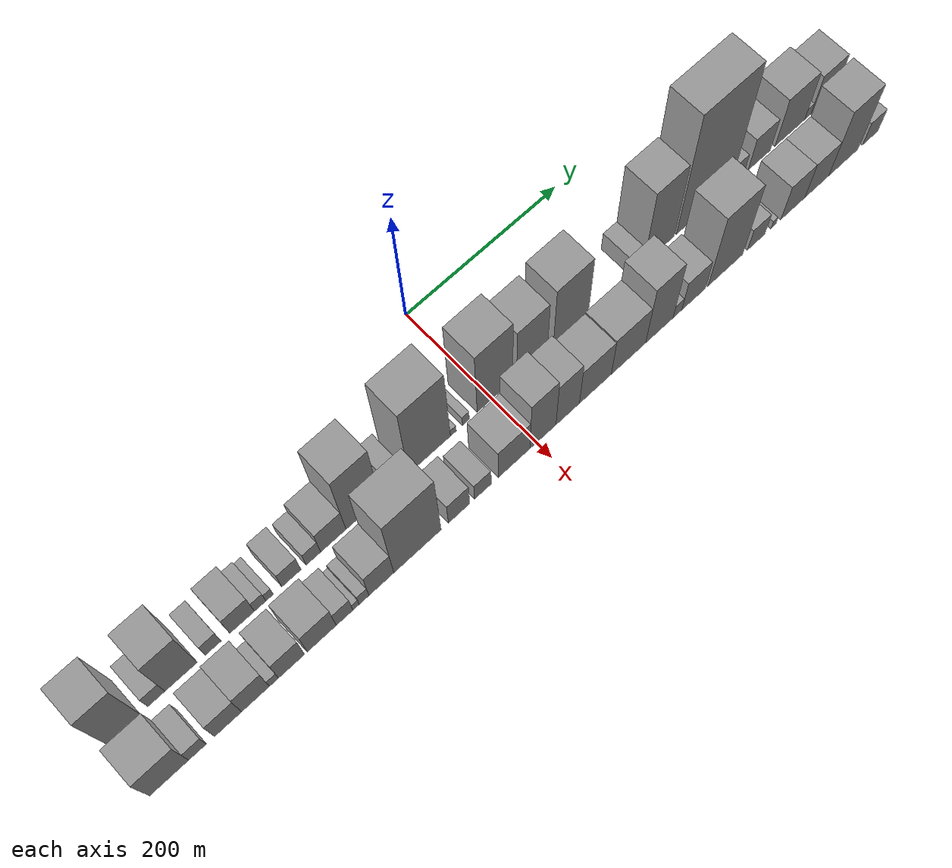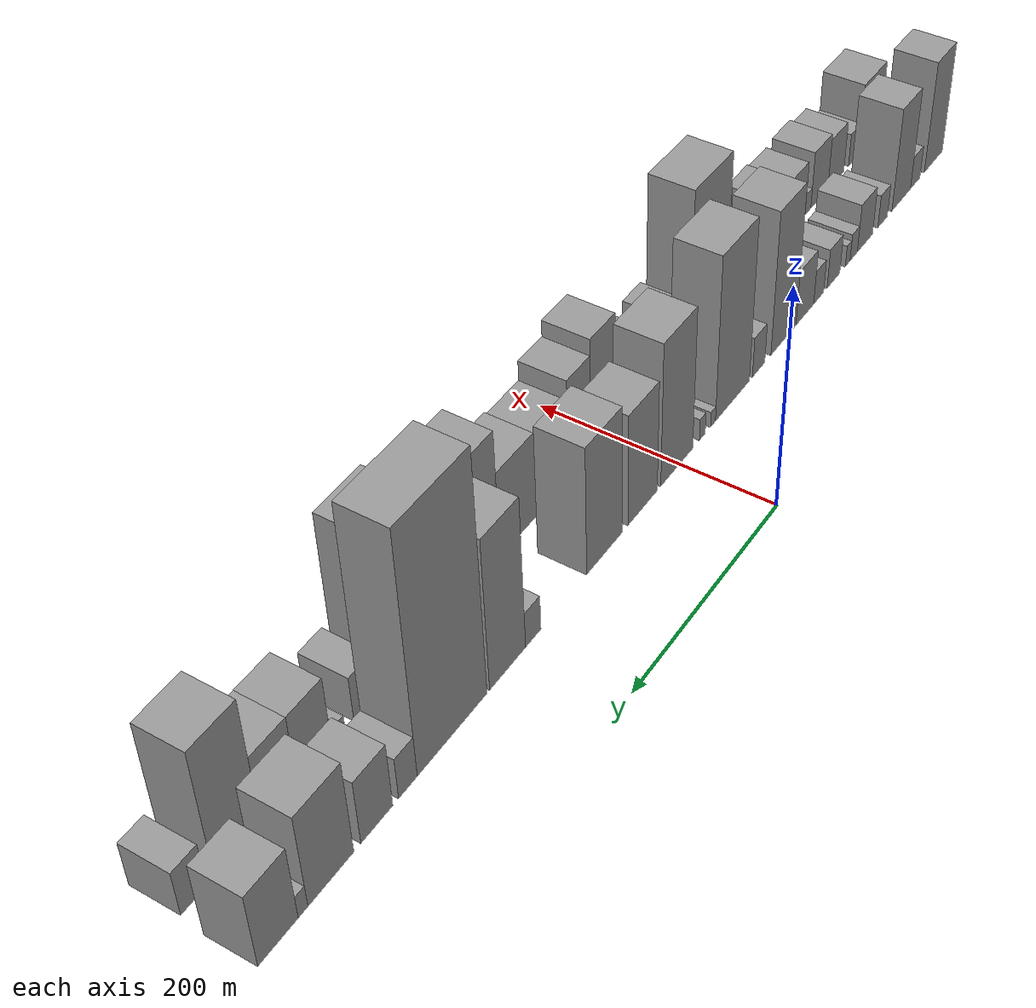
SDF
<sdf version="1.6">
 <world name="default">
  <scene>
   <sky><clouds><speed>12</speed></clouds></sky>
   <ambient>0.4 0.4 0.4 1</ambient>
   <background>0.7 0.7 0.7 1</background>
   <shadows>1</shadows>
  </scene>
  <gravity>0 0 -9.8066</gravity>
  <magnetic_field>6e-06 2.3e-05 -4.2e-05</magnetic_field>
  <physics default="0" name="default_physics" type="ode">
   <ode>
    <solver>
     <type>quick</type>
     <iters>10</iters>
     <sor>1.0</sor>
     <use_dynamic_moi_rescaling>0</use_dynamic_moi_rescaling>
    </solver>
    <constraints>
     <cfm>0</cfm>
     <erp>0.2</erp>
     <contact_max_correcting_vel>100</contact_max_correcting_vel>
     <contact_surface_layer>0.001</contact_surface_layer>
    </constraints>
   </ode>
   <max_step_size>0.004</max_step_size>
   <real_time_factor>1</real_time_factor>
   <real_time_update_rate>250</real_time_update_rate>
  </physics>
  <light name="sun" type="directional">
   <pose>0 0 10 0 0 0</pose>
   <diffuse>0.8 0.8 0.8 1</diffuse>
   <specular>0.2 0.2 0.2 1</specular>
   <attenuation>
    <range>1000</range>
    <constant>0.9</constant>
    <linear>0.01</linear>
    <quadratic>0.001</quadratic>
   </attenuation>
   <direction>-0.5 0.1 -0.9</direction>
  </light>
  <model name="building_1">
   <static>1</static>
   <pose>100.0000 -441.4001 0 0.000000 0.000000 0.000000</pose>
   <link name="link">
    <pose>0 0 55.50 0 0 0</pose>
    <collision name="collision"><geometry><box><size>40.0000 37.1998 111.0000</size></box></geometry></collision>
    <visual name="visual">
     <cast_shadows>0</cast_shadows>
     <geometry><box><size>40.0000 37.1998 111.0000</size></box></geometry>
     <material>
      <script>
       <uri>model://grey_wall/materials/scripts</uri>
       <uri>model://grey_wall/materials/textures</uri>
       <name>vrc/grey_wall</name>
      </script>
     </material>
    </visual>
   </link>
  </model>
  <model name="building_2">
   <static>1</static>
   <pose>100.0000 -404.2057 0 0.000000 0.000000 0.000000</pose>
   <link name="link">
    <pose>0 0 16.50 0 0 0</pose>
    <collision name="collision"><geometry><box><size>40.0000 19.1890 33.0000</size></box></geometry></collision>
    <visual name="visual">
     <cast_shadows>0</cast_shadows>
     <geometry><box><size>40.0000 19.1890 33.0000</size></box></geometry>
     <material>
      <script>
       <uri>model://grey_wall/materials/scripts</uri>
       <uri>model://grey_wall/materials/textures</uri>
       <name>vrc/grey_wall</name>
      </script>
     </material>
    </visual>
   </link>
  </model>
  <model name="building_3">
   <static>1</static>
   <pose>100.0000 -376.3711 0 0.000000 0.000000 0.000000</pose>
   <link name="link">
    <pose>0 0 51.00 0 0 0</pose>
    <collision name="collision"><geometry><box><size>40.0000 36.4802 102.0000</size></box></geometry></collision>
    <visual name="visual">
     <cast_shadows>0</cast_shadows>
     <geometry><box><size>40.0000 36.4802 102.0000</size></box></geometry>
     <material>
      <script>
       <uri>model://grey_wall/materials/scripts</uri>
       <uri>model://grey_wall/materials/textures</uri>
       <name>vrc/grey_wall</name>
      </script>
     </material>
    </visual>
   </link>
  </model>
  <model name="building_4">
   <static>1</static>
   <pose>100.0000 -340.0315 0 0.000000 0.000000 0.000000</pose>
   <link name="link">
    <pose>0 0 16.50 0 0 0</pose>
    <collision name="collision"><geometry><box><size>40.0000 18.1991 33.0000</size></box></geometry></collision>
    <visual name="visual">
     <cast_shadows>0</cast_shadows>
     <geometry><box><size>40.0000 18.1991 33.0000</size></box></geometry>
     <material>
      <script>
       <uri>model://grey_wall/materials/scripts</uri>
       <uri>model://grey_wall/materials/textures</uri>
       <name>vrc/grey_wall</name>
      </script>
     </material>
    </visual>
   </link>
  </model>
  <model name="building_5">
   <static>1</static>
   <pose>100.0000 -306.6092 0 0.000000 0.000000 0.000000</pose>
   <link name="link">
    <pose>0 0 24.00 0 0 0</pose>
    <collision name="collision"><geometry><box><size>40.0000 28.6457 48.0000</size></box></geometry></collision>
    <visual name="visual">
     <cast_shadows>0</cast_shadows>
     <geometry><box><size>40.0000 28.6457 48.0000</size></box></geometry>
     <material>
      <script>
       <uri>model://grey_wall/materials/scripts</uri>
       <uri>model://grey_wall/materials/textures</uri>
       <name>vrc/grey_wall</name>
      </script>
     </material>
    </visual>
   </link>
  </model>
  <model name="building_6">
   <static>1</static>
   <pose>100.0000 -285.5846 0 0.000000 0.000000 0.000000</pose>
   <link name="link">
    <pose>0 0 13.50 0 0 0</pose>
    <collision name="collision"><geometry><box><size>40.0000 13.4035 27.0000</size></box></geometry></collision>
    <visual name="visual">
     <cast_shadows>0</cast_shadows>
     <geometry><box><size>40.0000 13.4035 27.0000</size></box></geometry>
     <material>
      <script>
       <uri>model://grey_wall/materials/scripts</uri>
       <uri>model://grey_wall/materials/textures</uri>
       <name>vrc/grey_wall</name>
      </script>
     </material>
    </visual>
   </link>
  </model>
  <model name="building_7">
   <static>1</static>
   <pose>100.0000 -274.5403 0 0.000000 0.000000 0.000000</pose>
   <link name="link">
    <pose>0 0 10.50 0 0 0</pose>
    <collision name="collision"><geometry><box><size>40.0000 8.6851 21.0000</size></box></geometry></collision>
    <visual name="visual">
     <cast_shadows>0</cast_shadows>
     <geometry><box><size>40.0000 8.6851 21.0000</size></box></geometry>
     <material>
      <script>
       <uri>model://grey_wall/materials/scripts</uri>
       <uri>model://grey_wall/materials/textures</uri>
       <name>vrc/grey_wall</name>
      </script>
     </material>
    </visual>
   </link>
  </model>
  <model name="building_8">
   <static>1</static>
   <pose>100.0000 -248.8001 0 0.000000 0.000000 0.000000</pose>
   <link name="link">
    <pose>0 0 19.50 0 0 0</pose>
    <collision name="collision"><geometry><box><size>40.0000 22.7953 39.0000</size></box></geometry></collision>
    <visual name="visual">
     <cast_shadows>0</cast_shadows>
     <geometry><box><size>40.0000 22.7953 39.0000</size></box></geometry>
     <material>
      <script>
       <uri>model://grey_wall/materials/scripts</uri>
       <uri>model://grey_wall/materials/textures</uri>
       <name>vrc/grey_wall</name>
      </script>
     </material>
    </visual>
   </link>
  </model>
  <model name="building_9">
   <static>1</static>
   <pose>100.0000 -222.6731 0 0.000000 0.000000 0.000000</pose>
   <link name="link">
    <pose>0 0 16.50 0 0 0</pose>
    <collision name="collision"><geometry><box><size>40.0000 17.4588 33.0000</size></box></geometry></collision>
    <visual name="visual">
     <cast_shadows>0</cast_shadows>
     <geometry><box><size>40.0000 17.4588 33.0000</size></box></geometry>
     <material>
      <script>
       <uri>model://grey_wall/materials/scripts</uri>
       <uri>model://grey_wall/materials/textures</uri>
       <name>vrc/grey_wall</name>
      </script>
     </material>
    </visual>
   </link>
  </model>
  <model name="building_10">
   <static>1</static>
   <pose>100.0000 -198.6619 0 0.000000 0.000000 0.000000</pose>
   <link name="link">
    <pose>0 0 27.00 0 0 0</pose>
    <collision name="collision"><geometry><box><size>40.0000 30.5637 54.0000</size></box></geometry></collision>
    <visual name="visual">
     <cast_shadows>0</cast_shadows>
     <geometry><box><size>40.0000 30.5637 54.0000</size></box></geometry>
     <material>
      <script>
       <uri>model://grey_wall/materials/scripts</uri>
       <uri>model://grey_wall/materials/textures</uri>
       <name>vrc/grey_wall</name>
      </script>
     </material>
    </visual>
   </link>
  </model>
  <model name="building_11">
   <static>1</static>
   <pose>100.0000 -162.4449 0 0.000000 0.000000 0.000000</pose>
   <link name="link">
    <pose>0 0 69.00 0 0 0</pose>
    <collision name="collision"><geometry><box><size>40.0000 41.8702 138.0000</size></box></geometry></collision>
    <visual name="visual">
     <cast_shadows>0</cast_shadows>
     <geometry><box><size>40.0000 41.8702 138.0000</size></box></geometry>
     <material>
      <script>
       <uri>model://grey_wall/materials/scripts</uri>
       <uri>model://grey_wall/materials/textures</uri>
       <name>vrc/grey_wall</name>
      </script>
     </material>
    </visual>
   </link>
  </model>
  <model name="building_12">
   <static>1</static>
   <pose>100.0000 -121.5482 0 0.000000 0.000000 0.000000</pose>
   <link name="link">
    <pose>0 0 19.50 0 0 0</pose>
    <collision name="collision"><geometry><box><size>40.0000 19.9233 39.0000</size></box></geometry></collision>
    <visual name="visual">
     <cast_shadows>0</cast_shadows>
     <geometry><box><size>40.0000 19.9233 39.0000</size></box></geometry>
     <material>
      <script>
       <uri>model://grey_wall/materials/scripts</uri>
       <uri>model://grey_wall/materials/textures</uri>
       <name>vrc/grey_wall</name>
      </script>
     </material>
    </visual>
   </link>
  </model>
  <model name="building_13">
   <static>1</static>
   <pose>100.0000 -80.1725 0 0.000000 0.000000 0.000000</pose>
   <link name="link">
    <pose>0 0 78.00 0 0 0</pose>
    <collision name="collision"><geometry><box><size>40.0000 52.8280 156.0000</size></box></geometry></collision>
    <visual name="visual">
     <cast_shadows>0</cast_shadows>
     <geometry><box><size>40.0000 52.8280 156.0000</size></box></geometry>
     <material>
      <script>
       <uri>model://grey_wall/materials/scripts</uri>
       <uri>model://grey_wall/materials/textures</uri>
       <name>vrc/grey_wall</name>
      </script>
     </material>
    </visual>
   </link>
  </model>
  <model name="building_14">
   <static>1</static>
   <pose>100.0000 -50.0257 0 0.000000 0.000000 0.000000</pose>
   <link name="link">
    <pose>0 0 7.50 0 0 0</pose>
    <collision name="collision"><geometry><box><size>40.0000 7.4655 15.0000</size></box></geometry></collision>
    <visual name="visual">
     <cast_shadows>0</cast_shadows>
     <geometry><box><size>40.0000 7.4655 15.0000</size></box></geometry>
     <material>
      <script>
       <uri>model://grey_wall/materials/scripts</uri>
       <uri>model://grey_wall/materials/textures</uri>
       <name>vrc/grey_wall</name>
      </script>
     </material>
    </visual>
   </link>
  </model>
  <model name="building_15">
   <static>1</static>
   <pose>100.0000 -33.9149 0 0.000000 0.000000 0.000000</pose>
   <link name="link">
    <pose>0 0 10.50 0 0 0</pose>
    <collision name="collision"><geometry><box><size>40.0000 8.7561 21.0000</size></box></geometry></collision>
    <visual name="visual">
     <cast_shadows>0</cast_shadows>
     <geometry><box><size>40.0000 8.7561 21.0000</size></box></geometry>
     <material>
      <script>
       <uri>model://grey_wall/materials/scripts</uri>
       <uri>model://grey_wall/materials/textures</uri>
       <name>vrc/grey_wall</name>
      </script>
     </material>
    </visual>
   </link>
  </model>
  <model name="building_16">
   <static>1</static>
   <pose>100.0000 3.5761 0 0.000000 0.000000 0.000000</pose>
   <link name="link">
    <pose>0 0 67.50 0 0 0</pose>
    <collision name="collision"><geometry><box><size>40.0000 46.2259 135.0000</size></box></geometry></collision>
    <visual name="visual">
     <cast_shadows>0</cast_shadows>
     <geometry><box><size>40.0000 46.2259 135.0000</size></box></geometry>
     <material>
      <script>
       <uri>model://grey_wall/materials/scripts</uri>
       <uri>model://grey_wall/materials/textures</uri>
       <name>vrc/grey_wall</name>
      </script>
     </material>
    </visual>
   </link>
  </model>
  <model name="building_17">
   <static>1</static>
   <pose>100.0000 52.0548 0 0.000000 0.000000 0.000000</pose>
   <link name="link">
    <pose>0 0 52.50 0 0 0</pose>
    <collision name="collision"><geometry><box><size>40.0000 40.7315 105.0000</size></box></geometry></collision>
    <visual name="visual">
     <cast_shadows>0</cast_shadows>
     <geometry><box><size>40.0000 40.7315 105.0000</size></box></geometry>
     <material>
      <script>
       <uri>model://grey_wall/materials/scripts</uri>
       <uri>model://grey_wall/materials/textures</uri>
       <name>vrc/grey_wall</name>
      </script>
     </material>
    </visual>
   </link>
  </model>
  <model name="building_18">
   <static>1</static>
   <pose>100.0000 103.8680 0 0.000000 0.000000 0.000000</pose>
   <link name="link">
    <pose>0 0 60.00 0 0 0</pose>
    <collision name="collision"><geometry><box><size>40.0000 46.8948 120.0000</size></box></geometry></collision>
    <visual name="visual">
     <cast_shadows>0</cast_shadows>
     <geometry><box><size>40.0000 46.8948 120.0000</size></box></geometry>
     <material>
      <script>
       <uri>model://grey_wall/materials/scripts</uri>
       <uri>model://grey_wall/materials/textures</uri>
       <name>vrc/grey_wall</name>
      </script>
     </material>
    </visual>
   </link>
  </model>
  <model name="building_19">
   <static>1</static>
   <pose>100.0000 194.3249 0 0.000000 0.000000 0.000000</pose>
   <link name="link">
    <pose>0 0 16.50 0 0 0</pose>
    <collision name="collision"><geometry><box><size>40.0000 18.6730 33.0000</size></box></geometry></collision>
    <visual name="visual">
     <cast_shadows>0</cast_shadows>
     <geometry><box><size>40.0000 18.6730 33.0000</size></box></geometry>
     <material>
      <script>
       <uri>model://grey_wall/materials/scripts</uri>
       <uri>model://grey_wall/materials/textures</uri>
       <name>vrc/grey_wall</name>
      </script>
     </material>
    </visual>
   </link>
  </model>
  <model name="building_20">
   <static>1</static>
   <pose>100.0000 224.9402 0 0.000000 0.000000 0.000000</pose>
   <link name="link">
    <pose>0 0 70.50 0 0 0</pose>
    <collision name="collision"><geometry><box><size>40.0000 42.5576 141.0000</size></box></geometry></collision>
    <visual name="visual">
     <cast_shadows>0</cast_shadows>
     <geometry><box><size>40.0000 42.5576 141.0000</size></box></geometry>
     <material>
      <script>
       <uri>model://grey_wall/materials/scripts</uri>
       <uri>model://grey_wall/materials/textures</uri>
       <name>vrc/grey_wall</name>
      </script>
     </material>
    </visual>
   </link>
  </model>
  <model name="building_21">
   <static>1</static>
   <pose>100.0000 287.9111 0 0.000000 0.000000 0.000000</pose>
   <link name="link">
    <pose>0 0 111.00 0 0 0</pose>
    <collision name="collision"><geometry><box><size>40.0000 77.3841 222.0000</size></box></geometry></collision>
    <visual name="visual">
     <cast_shadows>0</cast_shadows>
     <geometry><box><size>40.0000 77.3841 222.0000</size></box></geometry>
     <material>
      <script>
       <uri>model://grey_wall/materials/scripts</uri>
       <uri>model://grey_wall/materials/textures</uri>
       <name>vrc/grey_wall</name>
      </script>
     </material>
    </visual>
   </link>
  </model>
  <model name="building_22">
   <static>1</static>
   <pose>100.0000 336.4763 0 0.000000 0.000000 0.000000</pose>
   <link name="link">
    <pose>0 0 19.50 0 0 0</pose>
    <collision name="collision"><geometry><box><size>40.0000 19.7465 39.0000</size></box></geometry></collision>
    <visual name="visual">
     <cast_shadows>0</cast_shadows>
     <geometry><box><size>40.0000 19.7465 39.0000</size></box></geometry>
     <material>
      <script>
       <uri>model://grey_wall/materials/scripts</uri>
       <uri>model://grey_wall/materials/textures</uri>
       <name>vrc/grey_wall</name>
      </script>
     </material>
    </visual>
   </link>
  </model>
  <model name="building_23">
   <static>1</static>
   <pose>100.0000 368.6556 0 0.000000 0.000000 0.000000</pose>
   <link name="link">
    <pose>0 0 30.00 0 0 0</pose>
    <collision name="collision"><geometry><box><size>40.0000 32.6121 60.0000</size></box></geometry></collision>
    <visual name="visual">
     <cast_shadows>0</cast_shadows>
     <geometry><box><size>40.0000 32.6121 60.0000</size></box></geometry>
     <material>
      <script>
       <uri>model://grey_wall/materials/scripts</uri>
       <uri>model://grey_wall/materials/textures</uri>
       <name>vrc/grey_wall</name>
      </script>
     </material>
    </visual>
   </link>
  </model>
  <model name="building_24">
   <static>1</static>
   <pose>100.0000 414.2880 0 0.000000 0.000000 0.000000</pose>
   <link name="link">
    <pose>0 0 43.50 0 0 0</pose>
    <collision name="collision"><geometry><box><size>40.0000 44.6526 87.0000</size></box></geometry></collision>
    <visual name="visual">
     <cast_shadows>0</cast_shadows>
     <geometry><box><size>40.0000 44.6526 87.0000</size></box></geometry>
     <material>
      <script>
       <uri>model://grey_wall/materials/scripts</uri>
       <uri>model://grey_wall/materials/textures</uri>
       <name>vrc/grey_wall</name>
      </script>
     </material>
    </visual>
   </link>
  </model>
  <model name="building_25">
   <static>1</static>
   <pose>100.0000 441.2023 0 0.000000 0.000000 0.000000</pose>
   <link name="link">
    <pose>0 0 10.50 0 0 0</pose>
    <collision name="collision"><geometry><box><size>40.0000 9.1761 21.0000</size></box></geometry></collision>
    <visual name="visual">
     <cast_shadows>0</cast_shadows>
     <geometry><box><size>40.0000 9.1761 21.0000</size></box></geometry>
     <material>
      <script>
       <uri>model://grey_wall/materials/scripts</uri>
       <uri>model://grey_wall/materials/textures</uri>
       <name>vrc/grey_wall</name>
      </script>
     </material>
    </visual>
   </link>
  </model>
  <model name="building_26">
   <static>1</static>
   <pose>100.0000 464.4751 0 0.000000 0.000000 0.000000</pose>
   <link name="link">
    <pose>0 0 34.50 0 0 0</pose>
    <collision name="collision"><geometry><box><size>40.0000 37.3695 69.0000</size></box></geometry></collision>
    <visual name="visual">
     <cast_shadows>0</cast_shadows>
     <geometry><box><size>40.0000 37.3695 69.0000</size></box></geometry>
     <material>
      <script>
       <uri>model://grey_wall/materials/scripts</uri>
       <uri>model://grey_wall/materials/textures</uri>
       <name>vrc/grey_wall</name>
      </script>
     </material>
    </visual>
   </link>
  </model>
  <model name="building_27">
   <static>1</static>
   <pose>160.0000 -438.4941 0 0.000000 0.000000 0.000000</pose>
   <link name="link">
    <pose>0 0 36.00 0 0 0</pose>
    <collision name="collision"><geometry><box><size>40.0000 43.0119 72.0000</size></box></geometry></collision>
    <visual name="visual">
     <cast_shadows>0</cast_shadows>
     <geometry><box><size>40.0000 43.0119 72.0000</size></box></geometry>
     <material>
      <script>
       <uri>model://grey_wall/materials/scripts</uri>
       <uri>model://grey_wall/materials/textures</uri>
       <name>vrc/grey_wall</name>
      </script>
     </material>
    </visual>
   </link>
  </model>
  <model name="building_28">
   <static>1</static>
   <pose>160.0000 -407.1371 0 0.000000 0.000000 0.000000</pose>
   <link name="link">
    <pose>0 0 16.50 0 0 0</pose>
    <collision name="collision"><geometry><box><size>40.0000 19.7021 33.0000</size></box></geometry></collision>
    <visual name="visual">
     <cast_shadows>0</cast_shadows>
     <geometry><box><size>40.0000 19.7021 33.0000</size></box></geometry>
     <material>
      <script>
       <uri>model://grey_wall/materials/scripts</uri>
       <uri>model://grey_wall/materials/textures</uri>
       <name>vrc/grey_wall</name>
      </script>
     </material>
    </visual>
   </link>
  </model>
  <model name="building_29">
   <static>1</static>
   <pose>160.0000 -373.0233 0 0.000000 0.000000 0.000000</pose>
   <link name="link">
    <pose>0 0 25.50 0 0 0</pose>
    <collision name="collision"><geometry><box><size>40.0000 30.5255 51.0000</size></box></geometry></collision>
    <visual name="visual">
     <cast_shadows>0</cast_shadows>
     <geometry><box><size>40.0000 30.5255 51.0000</size></box></geometry>
     <material>
      <script>
       <uri>model://grey_wall/materials/scripts</uri>
       <uri>model://grey_wall/materials/textures</uri>
       <name>vrc/grey_wall</name>
      </script>
     </material>
    </visual>
   </link>
  </model>
  <model name="building_30">
   <static>1</static>
   <pose>160.0000 -341.8658 0 0.000000 0.000000 0.000000</pose>
   <link name="link">
    <pose>0 0 28.50 0 0 0</pose>
    <collision name="collision"><geometry><box><size>40.0000 31.7896 57.0000</size></box></geometry></collision>
    <visual name="visual">
     <cast_shadows>0</cast_shadows>
     <geometry><box><size>40.0000 31.7896 57.0000</size></box></geometry>
     <material>
      <script>
       <uri>model://grey_wall/materials/scripts</uri>
       <uri>model://grey_wall/materials/textures</uri>
       <name>vrc/grey_wall</name>
      </script>
     </material>
    </visual>
   </link>
  </model>
  <model name="building_31">
   <static>1</static>
   <pose>160.0000 -320.7440 0 0.000000 0.000000 0.000000</pose>
   <link name="link">
    <pose>0 0 10.50 0 0 0</pose>
    <collision name="collision"><geometry><box><size>40.0000 10.4540 21.0000</size></box></geometry></collision>
    <visual name="visual">
     <cast_shadows>0</cast_shadows>
     <geometry><box><size>40.0000 10.4540 21.0000</size></box></geometry>
     <material>
      <script>
       <uri>model://grey_wall/materials/scripts</uri>
       <uri>model://grey_wall/materials/textures</uri>
       <name>vrc/grey_wall</name>
      </script>
     </material>
    </visual>
   </link>
  </model>
  <model name="building_32">
   <static>1</static>
   <pose>160.0000 -300.3729 0 0.000000 0.000000 0.000000</pose>
   <link name="link">
    <pose>0 0 27.00 0 0 0</pose>
    <collision name="collision"><geometry><box><size>40.0000 30.2881 54.0000</size></box></geometry></collision>
    <visual name="visual">
     <cast_shadows>0</cast_shadows>
     <geometry><box><size>40.0000 30.2881 54.0000</size></box></geometry>
     <material>
      <script>
       <uri>model://grey_wall/materials/scripts</uri>
       <uri>model://grey_wall/materials/textures</uri>
       <name>vrc/grey_wall</name>
      </script>
     </material>
    </visual>
   </link>
  </model>
  <model name="building_33">
   <static>1</static>
   <pose>160.0000 -265.1818 0 0.000000 0.000000 0.000000</pose>
   <link name="link">
    <pose>0 0 28.50 0 0 0</pose>
    <collision name="collision"><geometry><box><size>40.0000 34.0942 57.0000</size></box></geometry></collision>
    <visual name="visual">
     <cast_shadows>0</cast_shadows>
     <geometry><box><size>40.0000 34.0942 57.0000</size></box></geometry>
     <material>
      <script>
       <uri>model://grey_wall/materials/scripts</uri>
       <uri>model://grey_wall/materials/textures</uri>
       <name>vrc/grey_wall</name>
      </script>
     </material>
    </visual>
   </link>
  </model>
  <model name="building_34">
   <static>1</static>
   <pose>160.0000 -238.2033 0 0.000000 0.000000 0.000000</pose>
   <link name="link">
    <pose>0 0 19.50 0 0 0</pose>
    <collision name="collision"><geometry><box><size>40.0000 19.8627 39.0000</size></box></geometry></collision>
    <visual name="visual">
     <cast_shadows>0</cast_shadows>
     <geometry><box><size>40.0000 19.8627 39.0000</size></box></geometry>
     <material>
      <script>
       <uri>model://grey_wall/materials/scripts</uri>
       <uri>model://grey_wall/materials/textures</uri>
       <name>vrc/grey_wall</name>
      </script>
     </material>
    </visual>
   </link>
  </model>
  <model name="building_35">
   <static>1</static>
   <pose>160.0000 -224.5361 0 0.000000 0.000000 0.000000</pose>
   <link name="link">
    <pose>0 0 9.00 0 0 0</pose>
    <collision name="collision"><geometry><box><size>40.0000 7.4718 18.0000</size></box></geometry></collision>
    <visual name="visual">
     <cast_shadows>0</cast_shadows>
     <geometry><box><size>40.0000 7.4718 18.0000</size></box></geometry>
     <material>
      <script>
       <uri>model://grey_wall/materials/scripts</uri>
       <uri>model://grey_wall/materials/textures</uri>
       <name>vrc/grey_wall</name>
      </script>
     </material>
    </visual>
   </link>
  </model>
  <model name="building_36">
   <static>1</static>
   <pose>160.0000 -214.9750 0 0.000000 0.000000 0.000000</pose>
   <link name="link">
    <pose>0 0 13.50 0 0 0</pose>
    <collision name="collision"><geometry><box><size>40.0000 11.6504 27.0000</size></box></geometry></collision>
    <visual name="visual">
     <cast_shadows>0</cast_shadows>
     <geometry><box><size>40.0000 11.6504 27.0000</size></box></geometry>
     <material>
      <script>
       <uri>model://grey_wall/materials/scripts</uri>
       <uri>model://grey_wall/materials/textures</uri>
       <name>vrc/grey_wall</name>
      </script>
     </material>
    </visual>
   </link>
  </model>
  <model name="building_37">
   <static>1</static>
   <pose>160.0000 -194.1229 0 0.000000 0.000000 0.000000</pose>
   <link name="link">
    <pose>0 0 30.00 0 0 0</pose>
    <collision name="collision"><geometry><box><size>40.0000 30.0536 60.0000</size></box></geometry></collision>
    <visual name="visual">
     <cast_shadows>0</cast_shadows>
     <geometry><box><size>40.0000 30.0536 60.0000</size></box></geometry>
     <material>
      <script>
       <uri>model://grey_wall/materials/scripts</uri>
       <uri>model://grey_wall/materials/textures</uri>
       <name>vrc/grey_wall</name>
      </script>
     </material>
    </visual>
   </link>
  </model>
  <model name="building_38">
   <static>1</static>
   <pose>160.0000 -150.0667 0 0.000000 0.000000 0.000000</pose>
   <link name="link">
    <pose>0 0 73.50 0 0 0</pose>
    <collision name="collision"><geometry><box><size>40.0000 58.0588 147.0000</size></box></geometry></collision>
    <visual name="visual">
     <cast_shadows>0</cast_shadows>
     <geometry><box><size>40.0000 58.0588 147.0000</size></box></geometry>
     <material>
      <script>
       <uri>model://grey_wall/materials/scripts</uri>
       <uri>model://grey_wall/materials/textures</uri>
       <name>vrc/grey_wall</name>
      </script>
     </material>
    </visual>
   </link>
  </model>
  <model name="building_39">
   <static>1</static>
   <pose>160.0000 -98.7298 0 0.000000 0.000000 0.000000</pose>
   <link name="link">
    <pose>0 0 25.50 0 0 0</pose>
    <collision name="collision"><geometry><box><size>40.0000 26.6151 51.0000</size></box></geometry></collision>
    <visual name="visual">
     <cast_shadows>0</cast_shadows>
     <geometry><box><size>40.0000 26.6151 51.0000</size></box></geometry>
     <material>
      <script>
       <uri>model://grey_wall/materials/scripts</uri>
       <uri>model://grey_wall/materials/textures</uri>
       <name>vrc/grey_wall</name>
      </script>
     </material>
    </visual>
   </link>
  </model>
  <model name="building_40">
   <static>1</static>
   <pose>160.0000 -68.7859 0 0.000000 0.000000 0.000000</pose>
   <link name="link">
    <pose>0 0 19.50 0 0 0</pose>
    <collision name="collision"><geometry><box><size>40.0000 21.2727 39.0000</size></box></geometry></collision>
    <visual name="visual">
     <cast_shadows>0</cast_shadows>
     <geometry><box><size>40.0000 21.2727 39.0000</size></box></geometry>
     <material>
      <script>
       <uri>model://grey_wall/materials/scripts</uri>
       <uri>model://grey_wall/materials/textures</uri>
       <name>vrc/grey_wall</name>
      </script>
     </material>
    </visual>
   </link>
  </model>
  <model name="building_41">
   <static>1</static>
   <pose>160.0000 -28.9513 0 0.000000 0.000000 0.000000</pose>
   <link name="link">
    <pose>0 0 34.50 0 0 0</pose>
    <collision name="collision"><geometry><box><size>40.0000 40.3965 69.0000</size></box></geometry></collision>
    <visual name="visual">
     <cast_shadows>0</cast_shadows>
     <geometry><box><size>40.0000 40.3965 69.0000</size></box></geometry>
     <material>
      <script>
       <uri>model://grey_wall/materials/scripts</uri>
       <uri>model://grey_wall/materials/textures</uri>
       <name>vrc/grey_wall</name>
      </script>
     </material>
    </visual>
   </link>
  </model>
  <model name="building_42">
   <static>1</static>
   <pose>160.0000 8.1220 0 0.000000 0.000000 0.000000</pose>
   <link name="link">
    <pose>0 0 55.50 0 0 0</pose>
    <collision name="collision"><geometry><box><size>40.0000 33.7501 111.0000</size></box></geometry></collision>
    <visual name="visual">
     <cast_shadows>0</cast_shadows>
     <geometry><box><size>40.0000 33.7501 111.0000</size></box></geometry>
     <material>
      <script>
       <uri>model://grey_wall/materials/scripts</uri>
       <uri>model://grey_wall/materials/textures</uri>
       <name>vrc/grey_wall</name>
      </script>
     </material>
    </visual>
   </link>
  </model>
  <model name="building_43">
   <static>1</static>
   <pose>160.0000 40.4053 0 0.000000 0.000000 0.000000</pose>
   <link name="link">
    <pose>0 0 48.00 0 0 0</pose>
    <collision name="collision"><geometry><box><size>40.0000 30.8163 96.0000</size></box></geometry></collision>
    <visual name="visual">
     <cast_shadows>0</cast_shadows>
     <geometry><box><size>40.0000 30.8163 96.0000</size></box></geometry>
     <material>
      <script>
       <uri>model://grey_wall/materials/scripts</uri>
       <uri>model://grey_wall/materials/textures</uri>
       <name>vrc/grey_wall</name>
      </script>
     </material>
    </visual>
   </link>
  </model>
  <model name="building_44">
   <static>1</static>
   <pose>160.0000 77.0247 0 0.000000 0.000000 0.000000</pose>
   <link name="link">
    <pose>0 0 39.00 0 0 0</pose>
    <collision name="collision"><geometry><box><size>40.0000 42.4225 78.0000</size></box></geometry></collision>
    <visual name="visual">
     <cast_shadows>0</cast_shadows>
     <geometry><box><size>40.0000 42.4225 78.0000</size></box></geometry>
     <material>
      <script>
       <uri>model://grey_wall/materials/scripts</uri>
       <uri>model://grey_wall/materials/textures</uri>
       <name>vrc/grey_wall</name>
      </script>
     </material>
    </visual>
   </link>
  </model>
  <model name="building_45">
   <static>1</static>
   <pose>160.0000 121.3964 0 0.000000 0.000000 0.000000</pose>
   <link name="link">
    <pose>0 0 40.50 0 0 0</pose>
    <collision name="collision"><geometry><box><size>40.0000 46.3209 81.0000</size></box></geometry></collision>
    <visual name="visual">
     <cast_shadows>0</cast_shadows>
     <geometry><box><size>40.0000 46.3209 81.0000</size></box></geometry>
     <material>
      <script>
       <uri>model://grey_wall/materials/scripts</uri>
       <uri>model://grey_wall/materials/textures</uri>
       <name>vrc/grey_wall</name>
      </script>
     </material>
    </visual>
   </link>
  </model>
  <model name="building_46">
   <static>1</static>
   <pose>160.0000 163.4112 0 0.000000 0.000000 0.000000</pose>
   <link name="link">
    <pose>0 0 60.00 0 0 0</pose>
    <collision name="collision"><geometry><box><size>40.0000 37.7087 120.0000</size></box></geometry></collision>
    <visual name="visual">
     <cast_shadows>0</cast_shadows>
     <geometry><box><size>40.0000 37.7087 120.0000</size></box></geometry>
     <material>
      <script>
       <uri>model://grey_wall/materials/scripts</uri>
       <uri>model://grey_wall/materials/textures</uri>
       <name>vrc/grey_wall</name>
      </script>
     </material>
    </visual>
   </link>
  </model>
  <model name="building_47">
   <static>1</static>
   <pose>160.0000 188.3471 0 0.000000 0.000000 0.000000</pose>
   <link name="link">
    <pose>0 0 13.50 0 0 0</pose>
    <collision name="collision"><geometry><box><size>40.0000 12.1630 27.0000</size></box></geometry></collision>
    <visual name="visual">
     <cast_shadows>0</cast_shadows>
     <geometry><box><size>40.0000 12.1630 27.0000</size></box></geometry>
     <material>
      <script>
       <uri>model://grey_wall/materials/scripts</uri>
       <uri>model://grey_wall/materials/textures</uri>
       <name>vrc/grey_wall</name>
      </script>
     </material>
    </visual>
   </link>
  </model>
  <model name="building_48">
   <static>1</static>
   <pose>160.0000 210.7800 0 0.000000 0.000000 0.000000</pose>
   <link name="link">
    <pose>0 0 30.00 0 0 0</pose>
    <collision name="collision"><geometry><box><size>40.0000 32.7028 60.0000</size></box></geometry></collision>
    <visual name="visual">
     <cast_shadows>0</cast_shadows>
     <geometry><box><size>40.0000 32.7028 60.0000</size></box></geometry>
     <material>
      <script>
       <uri>model://grey_wall/materials/scripts</uri>
       <uri>model://grey_wall/materials/textures</uri>
       <name>vrc/grey_wall</name>
      </script>
     </material>
    </visual>
   </link>
  </model>
  <model name="building_49">
   <static>1</static>
   <pose>160.0000 255.5981 0 0.000000 0.000000 0.000000</pose>
   <link name="link">
    <pose>0 0 70.50 0 0 0</pose>
    <collision name="collision"><geometry><box><size>40.0000 48.9335 141.0000</size></box></geometry></collision>
    <visual name="visual">
     <cast_shadows>0</cast_shadows>
     <geometry><box><size>40.0000 48.9335 141.0000</size></box></geometry>
     <material>
      <script>
       <uri>model://grey_wall/materials/scripts</uri>
       <uri>model://grey_wall/materials/textures</uri>
       <name>vrc/grey_wall</name>
      </script>
     </material>
    </visual>
   </link>
  </model>
  <model name="building_50">
   <static>1</static>
   <pose>160.0000 299.5669 0 0.000000 0.000000 0.000000</pose>
   <link name="link">
    <pose>0 0 21.00 0 0 0</pose>
    <collision name="collision"><geometry><box><size>40.0000 25.0041 42.0000</size></box></geometry></collision>
    <visual name="visual">
     <cast_shadows>0</cast_shadows>
     <geometry><box><size>40.0000 25.0041 42.0000</size></box></geometry>
     <material>
      <script>
       <uri>model://grey_wall/materials/scripts</uri>
       <uri>model://grey_wall/materials/textures</uri>
       <name>vrc/grey_wall</name>
      </script>
     </material>
    </visual>
   </link>
  </model>
  <model name="building_51">
   <static>1</static>
   <pose>160.0000 324.5842 0 0.000000 0.000000 0.000000</pose>
   <link name="link">
    <pose>0 0 7.50 0 0 0</pose>
    <collision name="collision"><geometry><box><size>40.0000 7.0304 15.0000</size></box></geometry></collision>
    <visual name="visual">
     <cast_shadows>0</cast_shadows>
     <geometry><box><size>40.0000 7.0304 15.0000</size></box></geometry>
     <material>
      <script>
       <uri>model://grey_wall/materials/scripts</uri>
       <uri>model://grey_wall/materials/textures</uri>
       <name>vrc/grey_wall</name>
      </script>
     </material>
    </visual>
   </link>
  </model>
  <model name="building_52">
   <static>1</static>
   <pose>160.0000 352.6966 0 0.000000 0.000000 0.000000</pose>
   <link name="link">
    <pose>0 0 33.00 0 0 0</pose>
    <collision name="collision"><geometry><box><size>40.0000 35.1942 66.0000</size></box></geometry></collision>
    <visual name="visual">
     <cast_shadows>0</cast_shadows>
     <geometry><box><size>40.0000 35.1942 66.0000</size></box></geometry>
     <material>
      <script>
       <uri>model://grey_wall/materials/scripts</uri>
       <uri>model://grey_wall/materials/textures</uri>
       <name>vrc/grey_wall</name>
      </script>
     </material>
    </visual>
   </link>
  </model>
  <model name="building_53">
   <static>1</static>
   <pose>160.0000 387.9368 0 0.000000 0.000000 0.000000</pose>
   <link name="link">
    <pose>0 0 33.00 0 0 0</pose>
    <collision name="collision"><geometry><box><size>40.0000 35.2863 66.0000</size></box></geometry></collision>
    <visual name="visual">
     <cast_shadows>0</cast_shadows>
     <geometry><box><size>40.0000 35.2863 66.0000</size></box></geometry>
     <material>
      <script>
       <uri>model://grey_wall/materials/scripts</uri>
       <uri>model://grey_wall/materials/textures</uri>
       <name>vrc/grey_wall</name>
      </script>
     </material>
    </visual>
   </link>
  </model>
  <model name="building_54">
   <static>1</static>
   <pose>160.0000 427.5953 0 0.000000 0.000000 0.000000</pose>
   <link name="link">
    <pose>0 0 60.00 0 0 0</pose>
    <collision name="collision"><geometry><box><size>40.0000 44.0306 120.0000</size></box></geometry></collision>
    <visual name="visual">
     <cast_shadows>0</cast_shadows>
     <geometry><box><size>40.0000 44.0306 120.0000</size></box></geometry>
     <material>
      <script>
       <uri>model://grey_wall/materials/scripts</uri>
       <uri>model://grey_wall/materials/textures</uri>
       <name>vrc/grey_wall</name>
      </script>
     </material>
    </visual>
   </link>
  </model>
  <model name="building_55">
   <static>1</static>
   <pose>160.0000 468.3242 0 0.000000 0.000000 0.000000</pose>
   <link name="link">
    <pose>0 0 21.00 0 0 0</pose>
    <collision name="collision"><geometry><box><size>40.0000 23.4273 42.0000</size></box></geometry></collision>
    <visual name="visual">
     <cast_shadows>0</cast_shadows>
     <geometry><box><size>40.0000 23.4273 42.0000</size></box></geometry>
     <material>
      <script>
       <uri>model://grey_wall/materials/scripts</uri>
       <uri>model://grey_wall/materials/textures</uri>
       <name>vrc/grey_wall</name>
      </script>
     </material>
    </visual>
   </link>
  </model>
 </world>
</sdf>
